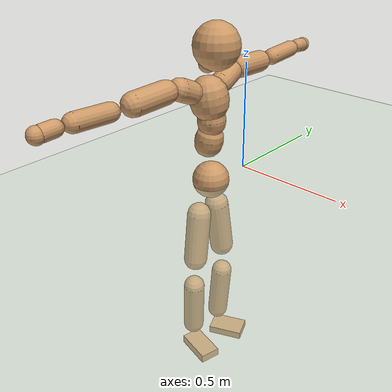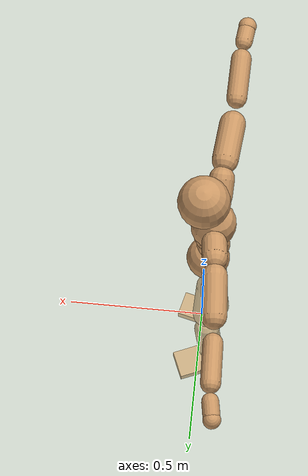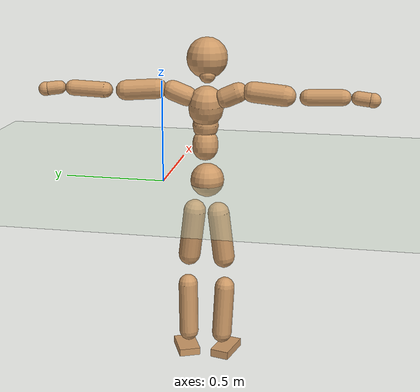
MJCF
<mujoco model="humanoid">
  <compiler coordinate="local"/>
  <default>
    <joint damping="0.0" armature="0.01" stiffness="0.0" limited="true"/>
    <geom conaffinity="1" condim="3" contype="7" margin="0.001" rgba="0.8 0.6 .4 1"/>
  </default>
  <asset>
    <texture type="skybox" builtin="gradient" rgb1=".4 .5 .6" rgb2="0 0 0" width="100" height="100"/>
    <texture builtin="flat" height="1278" mark="cross" markrgb="1 1 1" name="texgeom" random="0.01" rgb1="0.8 0.6 0.4" rgb2="0.8 0.6 0.4" type="cube" width="127"/>
    <texture builtin="checker" height="100" name="texplane" rgb1="0 0 0" rgb2="0.8 0.8 0.8" type="2d" width="100"/>
    <material name="MatPlane" reflectance="0.5" shininess="1" specular="1" texrepeat="60 60" texture="texplane"/>
    <material name="geom" texture="texgeom" texuniform="true"/>
  </asset>
  <worldbody>
    <light cutoff="100" diffuse="1 1 1" dir="-0 0 -1.3" directional="true" exponent="1" pos="0 0 1.3" specular=".1 .1 .1"/>
    <geom conaffinity="1" condim="3" name="floor" pos="0 0 0" rgba="0.8 0.9 0.8 1" size="100 100 .2" type="plane" material="MatPlane"/>
    <body name="Pelvis" pos="-0.0034 -0.2239 0.0182">
      <freejoint name="Pelvis"/>
      <geom type="sphere" contype="1" conaffinity="1" density="500" size="0.0831" pos="0.0000 0.0000 0.0000" name="Pelvis"/>
      <body name="L_Hip" pos="-0.0208 0.05 -0.077">
        <joint name="L_Hip_x" type="hinge" pos="0 0 0" axis="1 0 0" stiffness="800" damping="80" armature="0.02" range="-180.0000 180.0000"/>
        <joint name="L_Hip_y" type="hinge" pos="0 0 0" axis="0 1 0" stiffness="800" damping="80" armature="0.02" range="-180.0000 180.0000"/>
        <joint name="L_Hip_z" type="hinge" pos="0 0 0" axis="0 0 1" stiffness="800" damping="80" armature="0.02" range="-180.0000 180.0000"/>
        <geom type="capsule" contype="1" conaffinity="1" density="500" fromto="0.0031 0.0099 -0.0791 0.0123 0.0395 -0.3164" size="0.0551" name="L_Hip"/>
        <body name="L_Knee" pos="0.0154 0.0493 -0.3955">
          <joint name="L_Knee_x" type="hinge" pos="0 0 0" axis="1 0 0" stiffness="800" damping="80" armature="0.02" range="-180.0000 180.0000"/>
          <joint name="L_Knee_y" type="hinge" pos="0 0 0" axis="0 1 0" stiffness="800" damping="80" armature="0.02" range="-180.0000 180.0000"/>
          <joint name="L_Knee_z" type="hinge" pos="0 0 0" axis="0 0 1" stiffness="800" damping="80" armature="0.02" range="-180.0000 180.0000"/>
          <geom type="capsule" contype="1" conaffinity="1" density="500" fromto="-0.0062 -0.0023 -0.0846 -0.0248 -0.0093 -0.3383" size="0.0489" name="L_Knee"/>
          <body name="L_Ankle" pos="-0.031 -0.0116 -0.4229">
            <joint name="L_Ankle_x" type="hinge" pos="0 0 0" axis="1 0 0" stiffness="800" damping="80" armature="0.02" range="-180.0000 180.0000"/>
            <joint name="L_Ankle_y" type="hinge" pos="0 0 0" axis="0 1 0" stiffness="800" damping="80" armature="0.02" range="-180.0000 180.0000"/>
            <joint name="L_Ankle_z" type="hinge" pos="0 0 0" axis="0 0 1" stiffness="800" damping="80" armature="0.02" range="-180.0000 180.0000"/>
            <geom type="box" contype="1" conaffinity="1" density="500" pos="0.0584 0.0247 -0.0301" size="0.0837 0.0537 0.0187" quat="0.9800 0.0000 0.0000 0.1990" name="L_Ankle"/>
            <body name="L_Toe" pos="0.1167 0.0494 -0.0602">
              <joint name="L_Toe_x" type="hinge" pos="0 0 0" axis="1 0 0" stiffness="500" damping="50" armature="0.02" range="-180.0000 180.0000"/>
              <joint name="L_Toe_y" type="hinge" pos="0 0 0" axis="0 1 0" stiffness="500" damping="50" armature="0.02" range="-180.0000 180.0000"/>
              <joint name="L_Toe_z" type="hinge" pos="0 0 0" axis="0 0 1" stiffness="500" damping="50" armature="0.02" range="-180.0000 180.0000"/>
              <geom type="box" contype="1" conaffinity="1" density="500" pos="0.0000 0.0000 0.0320" size="0.001 0.0026 0.001" quat="0.9792 0.0000 0.0000 0.2030" name="L_Toe"/>
            </body>
          </body>
        </body>
      </body>
      <body name="R_Hip" pos="-0.0182 -0.0506 -0.0848">
        <joint name="R_Hip_x" type="hinge" pos="0 0 0" axis="1 0 0" stiffness="800" damping="80" armature="0.02" range="-180.0000 180.0000"/>
        <joint name="R_Hip_y" type="hinge" pos="0 0 0" axis="0 1 0" stiffness="800" damping="80" armature="0.02" range="-180.0000 180.0000"/>
        <joint name="R_Hip_z" type="hinge" pos="0 0 0" axis="0 0 1" stiffness="800" damping="80" armature="0.02" range="-180.0000 180.0000"/>
        <geom type="capsule" contype="1" conaffinity="1" density="500" fromto="0.0003 -0.0095 -0.0773 0.0013 -0.0379 -0.3094" size="0.0541" name="R_Hip"/>
        <body name="R_Knee" pos="0.0016 -0.0474 -0.3867">
          <joint name="R_Knee_x" type="hinge" pos="0 0 0" axis="1 0 0" stiffness="800" damping="80" armature="0.02" range="-180.0000 180.0000"/>
          <joint name="R_Knee_y" type="hinge" pos="0 0 0" axis="0 1 0" stiffness="800" damping="80" armature="0.02" range="-180.0000 180.0000"/>
          <joint name="R_Knee_z" type="hinge" pos="0 0 0" axis="0 0 1" stiffness="800" damping="80" armature="0.02" range="-180.0000 180.0000"/>
          <geom type="capsule" contype="1" conaffinity="1" density="500" fromto="-0.0058 0.0034 -0.0829 -0.0233 0.0136 -0.3317" size="0.0496" name="R_Knee"/>
          <body name="R_Ankle" pos="-0.0292 0.0171 -0.4146">
            <joint name="R_Ankle_x" type="hinge" pos="0 0 0" axis="1 0 0" stiffness="800" damping="80" armature="0.02" range="-180.0000 180.0000"/>
            <joint name="R_Ankle_y" type="hinge" pos="0 0 0" axis="0 1 0" stiffness="800" damping="80" armature="0.02" range="-180.0000 180.0000"/>
            <joint name="R_Ankle_z" type="hinge" pos="0 0 0" axis="0 0 1" stiffness="800" damping="80" armature="0.02" range="-180.0000 180.0000"/>
            <geom type="box" contype="1" conaffinity="1" density="500" pos="0.0630 -0.0158 -0.0308" size="0.0888 0.0473 0.0204" quat="0.9924 0.0000 0.0000 -0.1228" name="R_Ankle"/>
            <body name="R_Toe" pos="0.1259 -0.0316 -0.0616">
              <joint name="R_Toe_x" type="hinge" pos="0 0 0" axis="1 0 0" stiffness="500" damping="50" armature="0.02" range="-180.0000 180.0000"/>
              <joint name="R_Toe_y" type="hinge" pos="0 0 0" axis="0 1 0" stiffness="500" damping="50" armature="0.02" range="-180.0000 180.0000"/>
              <joint name="R_Toe_z" type="hinge" pos="0 0 0" axis="0 0 1" stiffness="500" damping="50" armature="0.02" range="-180.0000 180.0000"/>
              <geom type="box" contype="1" conaffinity="1" density="500" pos="0.0000 0.0000 0.0318" size="0.0009 0.0023 0.0011" quat="0.9935 0.0000 0.0000 -0.1136" name="R_Toe"/>
            </body>
          </body>
        </body>
      </body>
      <body name="Torso" pos="-0.0299 0.0041 0.1144">
        <joint name="Torso_x" type="hinge" pos="0 0 0" axis="1 0 0" stiffness="1000" damping="100" armature="0.02" range="-180.0000 180.0000"/>
        <joint name="Torso_y" type="hinge" pos="0 0 0" axis="0 1 0" stiffness="1000" damping="100" armature="0.02" range="-180.0000 180.0000"/>
        <joint name="Torso_z" type="hinge" pos="0 0 0" axis="0 0 1" stiffness="1000" damping="100" armature="0.02" range="-180.0000 180.0000"/>
        <geom type="capsule" contype="1" conaffinity="1" density="500" fromto="0.0159 0.0027 0.0804 0.0106 0.0018 0.0536" size="0.062589" name="Torso"/>
        <body name="Spine" pos="0.0265 0.0045 0.1341">
          <joint name="Spine_x" type="hinge" pos="0 0 0" axis="1 0 0" stiffness="1000" damping="100" armature="0.02" range="-180.0000 180.0000"/>
          <joint name="Spine_y" type="hinge" pos="0 0 0" axis="0 1 0" stiffness="1000" damping="100" armature="0.02" range="-180.0000 180.0000"/>
          <joint name="Spine_z" type="hinge" pos="0 0 0" axis="0 0 1" stiffness="1000" damping="100" armature="0.02" range="-180.0000 180.0000"/>
          <geom type="capsule" contype="1" conaffinity="1" density="500" fromto="-0.0004 -0.0008 0.0324 -0.0002 -0.0005 0.0216" size="0.062403" name="Spine"/>
          <body name="Chest" pos="-0.0006 -0.0013 0.0541">
            <joint name="Chest_x" type="hinge" pos="0 0 0" axis="1 0 0" stiffness="1000" damping="100" armature="0.02" range="-180.0000 180.0000"/>
            <joint name="Chest_y" type="hinge" pos="0 0 0" axis="0 1 0" stiffness="1000" damping="100" armature="0.02" range="-180.0000 180.0000"/>
            <joint name="Chest_z" type="hinge" pos="0 0 0" axis="0 0 1" stiffness="1000" damping="100" armature="0.02" range="-180.0000 180.0000"/>
            <geom type="capsule" contype="1" conaffinity="1" density="500" fromto="-0.0125 -0.0048 0.0823 -0.0083 -0.0032 0.0549" size="0.084444" name="Chest"/>
            <body name="Neck" pos="-0.0225 -0.0127 0.1997">
              <joint name="Neck_x" type="hinge" pos="0 0 0" axis="1 0 0" stiffness="500" damping="50" armature="0.02" range="-180.0000 180.0000"/>
              <joint name="Neck_y" type="hinge" pos="0 0 0" axis="0 1 0" stiffness="500" damping="50" armature="0.02" range="-180.0000 180.0000"/>
              <joint name="Neck_z" type="hinge" pos="0 0 0" axis="0 0 1" stiffness="500" damping="50" armature="0.02" range="-180.0000 180.0000"/>
              <geom type="capsule" contype="1" conaffinity="1" density="500" fromto="0.0101 0.0021 0.0188 0.0406 0.0084 0.0752" size="0.039153" name="Neck"/>
              <body name="Head" pos="0.0507 0.0105 0.0941">
                <joint name="Head_x" type="hinge" pos="0 0 0" axis="1 0 0" stiffness="500" damping="50" armature="0.02" range="-180.0000 180.0000"/>
                <joint name="Head_y" type="hinge" pos="0 0 0" axis="0 1 0" stiffness="500" damping="50" armature="0.02" range="-180.0000 180.0000"/>
                <joint name="Head_z" type="hinge" pos="0 0 0" axis="0 0 1" stiffness="500" damping="50" armature="0.02" range="-180.0000 180.0000"/>
                <geom type="sphere" contype="1" conaffinity="1" density="500" size="0.0989" pos="0.0000 0.0000 0.0000" name="Head"/>
              </body>
            </body>
            <body name="L_Thorax" pos="-0.0178 0.0652 0.1067">
              <joint name="L_Thorax_x" type="hinge" pos="0 0 0" axis="1 0 0" stiffness="500" damping="50" armature="0.02" range="-180.0000 180.0000"/>
              <joint name="L_Thorax_y" type="hinge" pos="0 0 0" axis="0 1 0" stiffness="500" damping="50" armature="0.02" range="-180.0000 180.0000"/>
              <joint name="L_Thorax_z" type="hinge" pos="0 0 0" axis="0 0 1" stiffness="500" damping="50" armature="0.02" range="-180.0000 180.0000"/>
              <geom type="capsule" contype="1" conaffinity="1" density="500" fromto="-0.0026 0.0225 0.0092 -0.0103 0.0900 0.0369" size="0.0479" name="L_Thorax"/>
              <body name="L_Shoulder" pos="-0.0128 0.1125 0.0461">
                <joint name="L_Shoulder_x" type="hinge" pos="0 0 0" axis="1 0 0" stiffness="500" damping="50" armature="0.02" range="-720.0000 720.0000"/>
                <joint name="L_Shoulder_y" type="hinge" pos="0 0 0" axis="0 1 0" stiffness="500" damping="50" armature="0.02" range="-720.0000 720.0000"/>
                <joint name="L_Shoulder_z" type="hinge" pos="0 0 0" axis="0 0 1" stiffness="500" damping="50" armature="0.02" range="-720.0000 720.0000"/>
                <geom type="capsule" contype="1" conaffinity="1" density="500" fromto="-0.0038 0.0507 -0.0033 -0.0152 0.2030 -0.0134" size="0.0485" name="L_Shoulder"/>
                <body name="L_Elbow" pos="-0.0189 0.2537 -0.0167">
                  <joint name="L_Elbow_x" type="hinge" pos="0 0 0" axis="1 0 0" stiffness="500" damping="50" armature="0.02" range="-720.0000 720.0000"/>
                  <joint name="L_Elbow_y" type="hinge" pos="0 0 0" axis="0 1 0" stiffness="500" damping="50" armature="0.02" range="-720.0000 720.0000"/>
                  <joint name="L_Elbow_z" type="hinge" pos="0 0 0" axis="0 0 1" stiffness="500" damping="50" armature="0.02" range="-720.0000 720.0000"/>
                  <geom type="capsule" contype="1" conaffinity="1" density="500" fromto="-0.0019 0.0521 0.0023 -0.0076 0.2085 0.0092" size="0.0381" name="L_Elbow"/>
                  <body name="L_Wrist" pos="-0.0095 0.2606 0.0115">
                    <joint name="L_Wrist_x" type="hinge" pos="0 0 0" axis="1 0 0" stiffness="300" damping="30" armature="0.02" range="-180.0000 180.0000"/>
                    <joint name="L_Wrist_y" type="hinge" pos="0 0 0" axis="0 1 0" stiffness="300" damping="30" armature="0.02" range="-180.0000 180.0000"/>
                    <joint name="L_Wrist_z" type="hinge" pos="0 0 0" axis="0 0 1" stiffness="300" damping="30" armature="0.02" range="-180.0000 180.0000"/>
                    <geom type="capsule" contype="1" conaffinity="1" density="500" fromto="-0.0030 0.0167 -0.0020 -0.0122 0.0669 -0.0081" size="0.0324" name="L_Wrist"/>
                    <body name="L_Hand" pos="-0.0152 0.0836 -0.0102">
                      <joint name="L_Hand_x" type="hinge" pos="0 0 0" axis="1 0 0" stiffness="300" damping="30" armature="0.02" range="-180.0000 180.0000"/>
                      <joint name="L_Hand_y" type="hinge" pos="0 0 0" axis="0 1 0" stiffness="300" damping="30" armature="0.02" range="-180.0000 180.0000"/>
                      <joint name="L_Hand_z" type="hinge" pos="0 0 0" axis="0 0 1" stiffness="300" damping="30" armature="0.02" range="-180.0000 180.0000"/>
                      <geom type="sphere" contype="1" conaffinity="1" density="500" size="0.0341" pos="0.0000 0.0000 0.0000" name="L_Hand"/>
                    </body>
                  </body>
                </body>
              </body>
            </body>
            <body name="R_Thorax" pos="-0.0221 -0.0767 0.105">
              <joint name="R_Thorax_x" type="hinge" pos="0 0 0" axis="1 0 0" stiffness="500" damping="50" armature="0.02" range="-180.0000 180.0000"/>
              <joint name="R_Thorax_y" type="hinge" pos="0 0 0" axis="0 1 0" stiffness="500" damping="50" armature="0.02" range="-180.0000 180.0000"/>
              <joint name="R_Thorax_z" type="hinge" pos="0 0 0" axis="0 0 1" stiffness="500" damping="50" armature="0.02" range="-180.0000 180.0000"/>
              <geom type="capsule" contype="1" conaffinity="1" density="500" fromto="-0.0009 -0.0208 0.0094 -0.0035 -0.0832 0.0375" size="0.0483" name="R_Thorax"/>
              <body name="R_Shoulder" pos="-0.0043 -0.104 0.0469">
                <joint name="R_Shoulder_x" type="hinge" pos="0 0 0" axis="1 0 0" stiffness="500" damping="50" armature="0.02" range="-720.0000 720.0000"/>
                <joint name="R_Shoulder_y" type="hinge" pos="0 0 0" axis="0 1 0" stiffness="500" damping="50" armature="0.02" range="-720.0000 720.0000"/>
                <joint name="R_Shoulder_z" type="hinge" pos="0 0 0" axis="0 0 1" stiffness="500" damping="50" armature="0.02" range="-720.0000 720.0000"/>
                <geom type="capsule" contype="1" conaffinity="1" density="500" fromto="-0.0048 -0.0513 -0.0038 -0.0193 -0.2050 -0.0151" size="0.0497" name="R_Shoulder"/>
                <body name="R_Elbow" pos="-0.0241 -0.2563 -0.0188">
                  <joint name="R_Elbow_x" type="hinge" pos="0 0 0" axis="1 0 0" stiffness="500" damping="50" armature="0.02" range="-720.0000 720.0000"/>
                  <joint name="R_Elbow_y" type="hinge" pos="0 0 0" axis="0 1 0" stiffness="500" damping="50" armature="0.02" range="-720.0000 720.0000"/>
                  <joint name="R_Elbow_z" type="hinge" pos="0 0 0" axis="0 0 1" stiffness="500" damping="50" armature="0.02" range="-720.0000 720.0000"/>
                  <geom type="capsule" contype="1" conaffinity="1" density="500" fromto="-0.0012 -0.0533 0.0019 -0.0046 -0.2132 0.0077" size="0.0385" name="R_Elbow"/>
                  <body name="R_Wrist" pos="-0.0058 -0.2665 0.0096">
                    <joint name="R_Wrist_x" type="hinge" pos="0 0 0" axis="1 0 0" stiffness="300" damping="30" armature="0.02" range="-180.0000 180.0000"/>
                    <joint name="R_Wrist_y" type="hinge" pos="0 0 0" axis="0 1 0" stiffness="300" damping="30" armature="0.02" range="-180.0000 180.0000"/>
                    <joint name="R_Wrist_z" type="hinge" pos="0 0 0" axis="0 0 1" stiffness="300" damping="30" armature="0.02" range="-180.0000 180.0000"/>
                    <geom type="capsule" contype="1" conaffinity="1" density="500" fromto="-0.0020 -0.0170 -0.0016 -0.0081 -0.0680 -0.0064" size="0.0327" name="R_Wrist"/>
                    <body name="R_Hand" pos="-0.0101 -0.085 -0.0081">
                      <joint name="R_Hand_x" type="hinge" pos="0 0 0" axis="1 0 0" stiffness="300" damping="30" armature="0.02" range="-180.0000 180.0000"/>
                      <joint name="R_Hand_y" type="hinge" pos="0 0 0" axis="0 1 0" stiffness="300" damping="30" armature="0.02" range="-180.0000 180.0000"/>
                      <joint name="R_Hand_z" type="hinge" pos="0 0 0" axis="0 0 1" stiffness="300" damping="30" armature="0.02" range="-180.0000 180.0000"/>
                      <geom type="sphere" contype="1" conaffinity="1" density="500" size="0.0344" pos="0.0000 0.0000 0.0000" name="R_Hand"/>
                    </body>
                  </body>
                </body>
              </body>
            </body>
          </body>
        </body>
      </body>
    </body>
  </worldbody>
  <actuator>
    <motor name="L_Hip_x" joint="L_Hip_x" gear="500"/>
    <motor name="L_Hip_y" joint="L_Hip_y" gear="500"/>
    <motor name="L_Hip_z" joint="L_Hip_z" gear="500"/>
    <motor name="L_Knee_x" joint="L_Knee_x" gear="500"/>
    <motor name="L_Knee_y" joint="L_Knee_y" gear="500"/>
    <motor name="L_Knee_z" joint="L_Knee_z" gear="500"/>
    <motor name="L_Ankle_x" joint="L_Ankle_x" gear="500"/>
    <motor name="L_Ankle_y" joint="L_Ankle_y" gear="500"/>
    <motor name="L_Ankle_z" joint="L_Ankle_z" gear="500"/>
    <motor name="L_Toe_x" joint="L_Toe_x" gear="500"/>
    <motor name="L_Toe_y" joint="L_Toe_y" gear="500"/>
    <motor name="L_Toe_z" joint="L_Toe_z" gear="500"/>
    <motor name="R_Hip_x" joint="R_Hip_x" gear="500"/>
    <motor name="R_Hip_y" joint="R_Hip_y" gear="500"/>
    <motor name="R_Hip_z" joint="R_Hip_z" gear="500"/>
    <motor name="R_Knee_x" joint="R_Knee_x" gear="500"/>
    <motor name="R_Knee_y" joint="R_Knee_y" gear="500"/>
    <motor name="R_Knee_z" joint="R_Knee_z" gear="500"/>
    <motor name="R_Ankle_x" joint="R_Ankle_x" gear="500"/>
    <motor name="R_Ankle_y" joint="R_Ankle_y" gear="500"/>
    <motor name="R_Ankle_z" joint="R_Ankle_z" gear="500"/>
    <motor name="R_Toe_x" joint="R_Toe_x" gear="500"/>
    <motor name="R_Toe_y" joint="R_Toe_y" gear="500"/>
    <motor name="R_Toe_z" joint="R_Toe_z" gear="500"/>
    <motor name="Torso_x" joint="Torso_x" gear="500"/>
    <motor name="Torso_y" joint="Torso_y" gear="500"/>
    <motor name="Torso_z" joint="Torso_z" gear="500"/>
    <motor name="Spine_x" joint="Spine_x" gear="500"/>
    <motor name="Spine_y" joint="Spine_y" gear="500"/>
    <motor name="Spine_z" joint="Spine_z" gear="500"/>
    <motor name="Chest_x" joint="Chest_x" gear="500"/>
    <motor name="Chest_y" joint="Chest_y" gear="500"/>
    <motor name="Chest_z" joint="Chest_z" gear="500"/>
    <motor name="Neck_x" joint="Neck_x" gear="500"/>
    <motor name="Neck_y" joint="Neck_y" gear="500"/>
    <motor name="Neck_z" joint="Neck_z" gear="500"/>
    <motor name="Head_x" joint="Head_x" gear="500"/>
    <motor name="Head_y" joint="Head_y" gear="500"/>
    <motor name="Head_z" joint="Head_z" gear="500"/>
    <motor name="L_Thorax_x" joint="L_Thorax_x" gear="500"/>
    <motor name="L_Thorax_y" joint="L_Thorax_y" gear="500"/>
    <motor name="L_Thorax_z" joint="L_Thorax_z" gear="500"/>
    <motor name="L_Shoulder_x" joint="L_Shoulder_x" gear="500"/>
    <motor name="L_Shoulder_y" joint="L_Shoulder_y" gear="500"/>
    <motor name="L_Shoulder_z" joint="L_Shoulder_z" gear="500"/>
    <motor name="L_Elbow_x" joint="L_Elbow_x" gear="500"/>
    <motor name="L_Elbow_y" joint="L_Elbow_y" gear="500"/>
    <motor name="L_Elbow_z" joint="L_Elbow_z" gear="500"/>
    <motor name="L_Wrist_x" joint="L_Wrist_x" gear="500"/>
    <motor name="L_Wrist_y" joint="L_Wrist_y" gear="500"/>
    <motor name="L_Wrist_z" joint="L_Wrist_z" gear="500"/>
    <motor name="L_Hand_x" joint="L_Hand_x" gear="500"/>
    <motor name="L_Hand_y" joint="L_Hand_y" gear="500"/>
    <motor name="L_Hand_z" joint="L_Hand_z" gear="500"/>
    <motor name="R_Thorax_x" joint="R_Thorax_x" gear="500"/>
    <motor name="R_Thorax_y" joint="R_Thorax_y" gear="500"/>
    <motor name="R_Thorax_z" joint="R_Thorax_z" gear="500"/>
    <motor name="R_Shoulder_x" joint="R_Shoulder_x" gear="500"/>
    <motor name="R_Shoulder_y" joint="R_Shoulder_y" gear="500"/>
    <motor name="R_Shoulder_z" joint="R_Shoulder_z" gear="500"/>
    <motor name="R_Elbow_x" joint="R_Elbow_x" gear="500"/>
    <motor name="R_Elbow_y" joint="R_Elbow_y" gear="500"/>
    <motor name="R_Elbow_z" joint="R_Elbow_z" gear="500"/>
    <motor name="R_Wrist_x" joint="R_Wrist_x" gear="500"/>
    <motor name="R_Wrist_y" joint="R_Wrist_y" gear="500"/>
    <motor name="R_Wrist_z" joint="R_Wrist_z" gear="500"/>
    <motor name="R_Hand_x" joint="R_Hand_x" gear="500"/>
    <motor name="R_Hand_y" joint="R_Hand_y" gear="500"/>
    <motor name="R_Hand_z" joint="R_Hand_z" gear="500"/>
  </actuator>
  <contact>
    <exclude body1="Torso" body2="Chest"/>
    <exclude body1="Head" body2="Chest"/>
    <exclude body1="R_Knee" body2="R_Toe"/>
    <exclude body1="R_Knee" body2="L_Ankle"/>
    <exclude body1="R_Knee" body2="L_Toe"/>
    <exclude body1="L_Knee" body2="L_Toe"/>
    <exclude body1="L_Knee" body2="R_Ankle"/>
    <exclude body1="L_Knee" body2="R_Toe"/>
    <exclude body1="L_Shoulder" body2="Chest"/>
    <exclude body1="R_Shoulder" body2="Chest"/>
  </contact>
  <sensor/>
  <size njmax="700" nconmax="700"/>
</mujoco>
